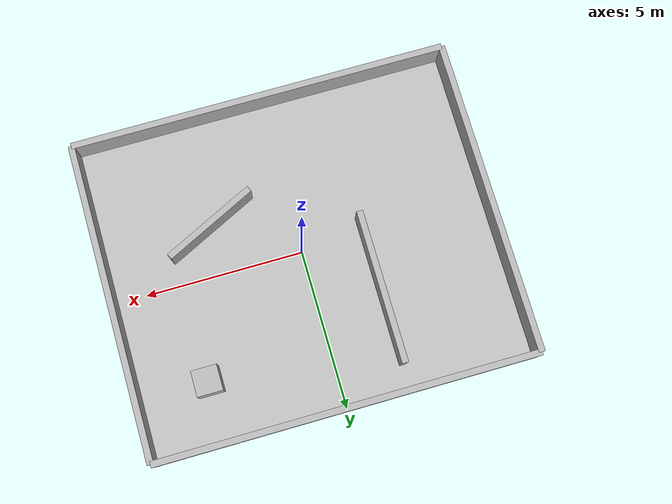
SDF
<?xml version="1.0"?>
<sdf version="1.8">
  <world name="asymmetric_indoor">
    <!-- Deliberately run at 0.2x so headless ROS bridges can preserve timestamp order. -->
    <physics name="1ms" type="ignored"><max_step_size>0.001</max_step_size><real_time_update_rate>200</real_time_update_rate><real_time_factor>0.2</real_time_factor></physics>
    <plugin filename="gz-sim-physics-system" name="gz::sim::systems::Physics"/>
    <plugin filename="gz-sim-user-commands-system" name="gz::sim::systems::UserCommands"/>
    <plugin filename="gz-sim-scene-broadcaster-system" name="gz::sim::systems::SceneBroadcaster"/>
    <plugin filename="gz-sim-sensors-system" name="gz::sim::systems::Sensors"><render_engine>ogre2</render_engine></plugin>
    <light type="directional" name="sun"><pose>0 0 10 0 0 0</pose><direction>-0.5 0.1 -0.9</direction></light>
    <model name="floor"><static>true</static><link name="link"><collision name="collision"><geometry><box><size>12 10 0.1</size></box></geometry></collision><visual name="visual"><geometry><box><size>12 10 0.1</size></box></geometry><material><ambient>0.75 0.75 0.75 1</ambient></material></visual></link></model>
    <!-- Unequal wall lengths and offset internal obstacles make lidar poses unambiguous. -->
    <model name="walls"><static>true</static><link name="link">
      <collision name="north"><pose>0 5 0.5 0 0 0</pose><geometry><box><size>12 0.2 1</size></box></geometry></collision>
      <collision name="south"><pose>0 -5 0.5 0 0 0</pose><geometry><box><size>12 0.2 1</size></box></geometry></collision>
      <collision name="east"><pose>6 0 0.5 0 0 0</pose><geometry><box><size>0.2 10 1</size></box></geometry></collision>
      <collision name="west"><pose>-6 0 0.5 0 0 0</pose><geometry><box><size>0.2 10 1</size></box></geometry></collision>
      <collision name="long_partition"><pose>-2 1.8 0.5 0 0 0</pose><geometry><box><size>0.2 4.8 1</size></box></geometry></collision>
      <collision name="short_partition"><pose>2.5 -1.5 0.5 0 0 0.45</pose><geometry><box><size>3.2 0.2 1</size></box></geometry></collision>
      <collision name="pillar"><pose>3.8 3.1 0.5 0 0 0</pose><geometry><box><size>0.8 0.8 1</size></box></geometry></collision>
      <visual name="north"><pose>0 5 0.5 0 0 0</pose><geometry><box><size>12 0.2 1</size></box></geometry></visual>
      <visual name="south"><pose>0 -5 0.5 0 0 0</pose><geometry><box><size>12 0.2 1</size></box></geometry></visual>
      <visual name="east"><pose>6 0 0.5 0 0 0</pose><geometry><box><size>0.2 10 1</size></box></geometry></visual>
      <visual name="west"><pose>-6 0 0.5 0 0 0</pose><geometry><box><size>0.2 10 1</size></box></geometry></visual>
      <visual name="long_partition"><pose>-2 1.8 0.5 0 0 0</pose><geometry><box><size>0.2 4.8 1</size></box></geometry></visual>
      <visual name="short_partition"><pose>2.5 -1.5 0.5 0 0 0.45</pose><geometry><box><size>3.2 0.2 1</size></box></geometry></visual>
      <visual name="pillar"><pose>3.8 3.1 0.5 0 0 0</pose><geometry><box><size>0.8 0.8 1</size></box></geometry></visual>
    </link></model>
  </world>
</sdf>
